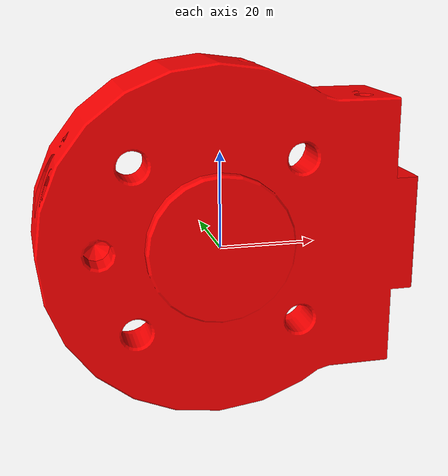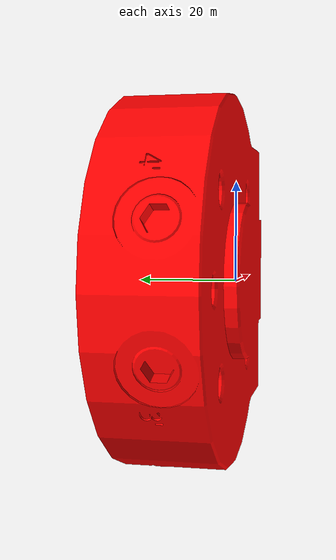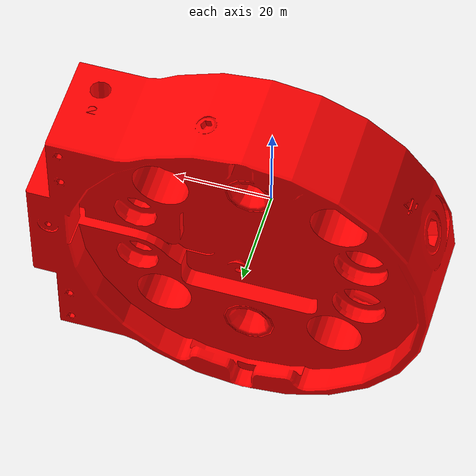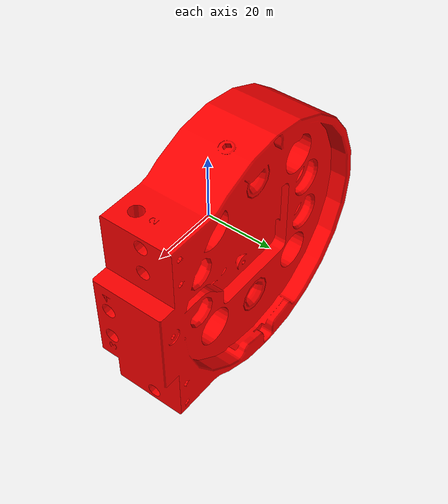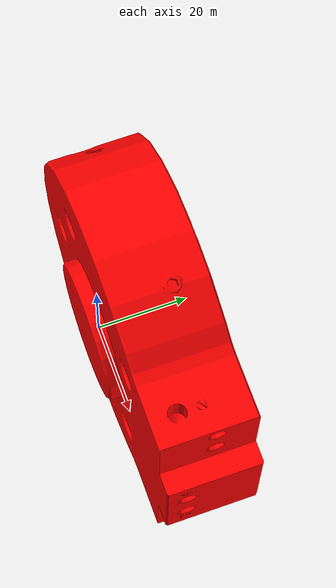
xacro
<?xml version="1.0"?>
<robot xmlns:xacro="http://www.ros.org/wiki/xacro" name="robot_side">

  <!-- Define properties -->
  <xacro:property name="mesh_scale" value="0.001 0.001 0.001" /> <!-- Adjust if mm->m conversion needed -->

  <material name="red">
       <color rgba="1 0 0 1"/>
  </material>

  <!-- BASE LINK (connects to robot flange) -->
  <link name="robot_side_link">
    <visual>
      <geometry>
        <mesh filename="package://nakit_visualisation/meshes/robot_side.dae"/>
      </geometry>
      <material name="red"/>
    </visual>
  </link>
</robot>
